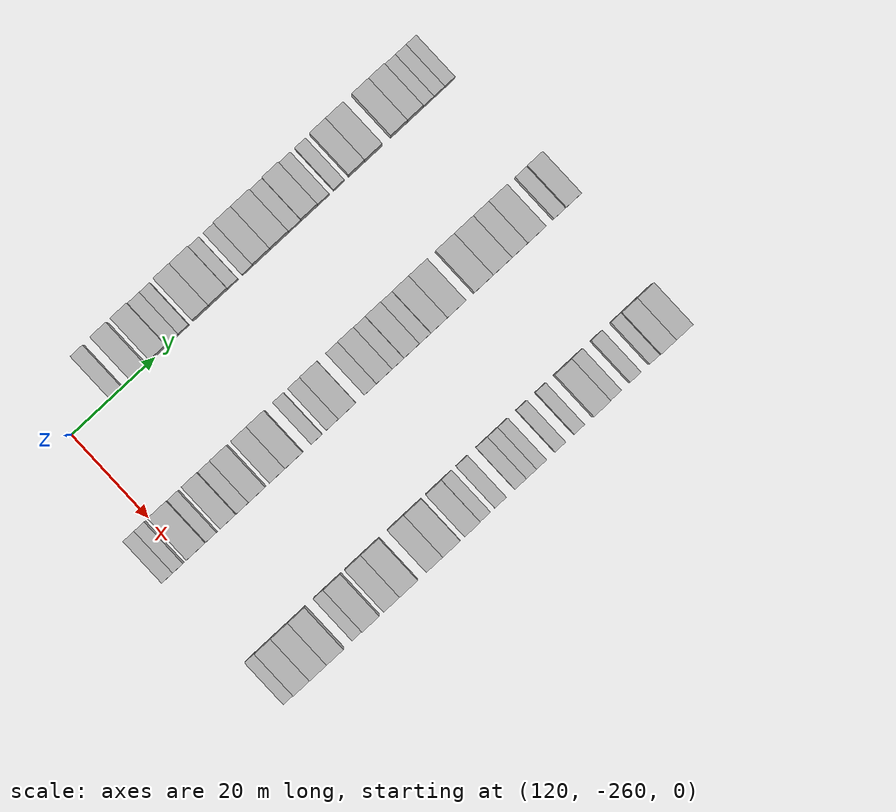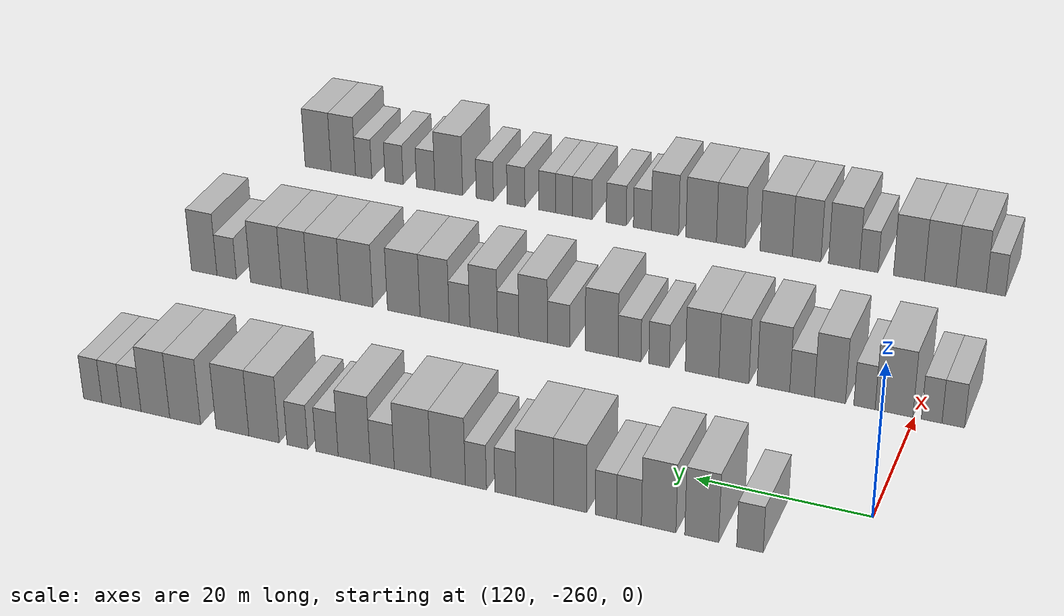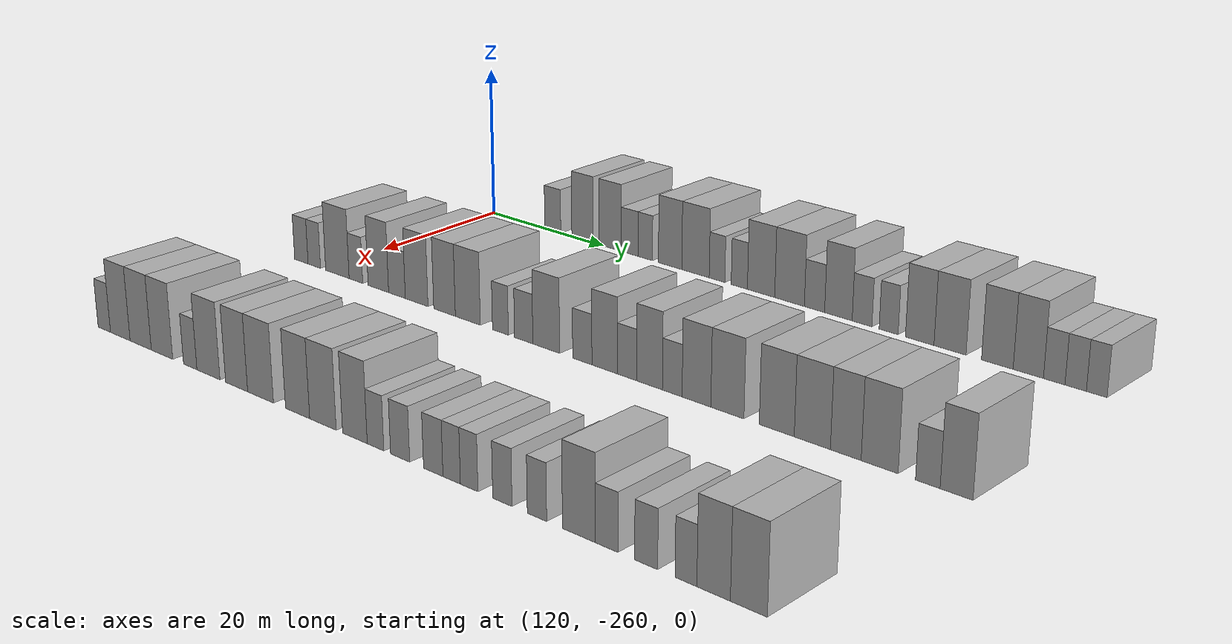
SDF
<sdf version="1.6">
 <world name="default">
  <model name="building_734">
   <static>1</static>
   <pose>115.0000 -249.0655 0 0.000000 0.000000 0.000000</pose>
   <link name="link">
    <pose>0 0 3.00 0 0 0</pose>
    <collision name="collision"><geometry><box><size>10.0000 2.9362 6.0000</size></box></geometry></collision>
    <visual name="visual">
     <cast_shadows>0</cast_shadows>
     <geometry><box><size>10.0000 2.9362 6.0000</size></box></geometry>
     <material>
      <script>
       <uri>model://HANNAS_wall/materials/scripts</uri>
       <uri>model://HANNAS_wall/materials/textures</uri>
       <name>vrc/HANNAS_wall</name>
      </script>
     </material>
    </visual>
   </link>
  </model>
  <model name="building_735">
   <static>1</static>
   <pose>115.0000 -243.6967 0 0.000000 0.000000 0.000000</pose>
   <link name="link">
    <pose>0 0 4.50 0 0 0</pose>
    <collision name="collision"><geometry><box><size>10.0000 3.8016 9.0000</size></box></geometry></collision>
    <visual name="visual">
     <cast_shadows>0</cast_shadows>
     <geometry><box><size>10.0000 3.8016 9.0000</size></box></geometry>
     <material>
      <script>
       <uri>model://HANNAS_wall/materials/scripts</uri>
       <uri>model://HANNAS_wall/materials/textures</uri>
       <name>vrc/HANNAS_wall</name>
      </script>
     </material>
    </visual>
   </link>
  </model>
  <model name="building_736">
   <static>1</static>
   <pose>115.0000 -238.8446 0 0.000000 0.000000 0.000000</pose>
   <link name="link">
    <pose>0 0 4.50 0 0 0</pose>
    <collision name="collision"><geometry><box><size>10.0000 3.9025 9.0000</size></box></geometry></collision>
    <visual name="visual">
     <cast_shadows>0</cast_shadows>
     <geometry><box><size>10.0000 3.9025 9.0000</size></box></geometry>
     <material>
      <script>
       <uri>model://HANNAS_wall/materials/scripts</uri>
       <uri>model://HANNAS_wall/materials/textures</uri>
       <name>vrc/HANNAS_wall</name>
      </script>
     </material>
    </visual>
   </link>
  </model>
  <model name="building_737">
   <static>1</static>
   <pose>115.0000 -235.4712 0 0.000000 0.000000 0.000000</pose>
   <link name="link">
    <pose>0 0 3.00 0 0 0</pose>
    <collision name="collision"><geometry><box><size>10.0000 2.8444 6.0000</size></box></geometry></collision>
    <visual name="visual">
     <cast_shadows>0</cast_shadows>
     <geometry><box><size>10.0000 2.8444 6.0000</size></box></geometry>
     <material>
      <script>
       <uri>model://HANNAS_wall/materials/scripts</uri>
       <uri>model://HANNAS_wall/materials/textures</uri>
       <name>vrc/HANNAS_wall</name>
      </script>
     </material>
    </visual>
   </link>
  </model>
  <model name="building_738">
   <static>1</static>
   <pose>115.0000 -232.8266 0 0.000000 0.000000 0.000000</pose>
   <link name="link">
    <pose>0 0 3.00 0 0 0</pose>
    <collision name="collision"><geometry><box><size>10.0000 2.4447 6.0000</size></box></geometry></collision>
    <visual name="visual">
     <cast_shadows>0</cast_shadows>
     <geometry><box><size>10.0000 2.4447 6.0000</size></box></geometry>
     <material>
      <script>
       <uri>model://HANNAS_wall/materials/scripts</uri>
       <uri>model://HANNAS_wall/materials/textures</uri>
       <name>vrc/HANNAS_wall</name>
      </script>
     </material>
    </visual>
   </link>
  </model>
  <model name="building_739">
   <static>1</static>
   <pose>115.0000 -228.6803 0 0.000000 0.000000 0.000000</pose>
   <link name="link">
    <pose>0 0 4.50 0 0 0</pose>
    <collision name="collision"><geometry><box><size>10.0000 3.8478 9.0000</size></box></geometry></collision>
    <visual name="visual">
     <cast_shadows>0</cast_shadows>
     <geometry><box><size>10.0000 3.8478 9.0000</size></box></geometry>
     <material>
      <script>
       <uri>model://HANNAS_wall/materials/scripts</uri>
       <uri>model://HANNAS_wall/materials/textures</uri>
       <name>vrc/HANNAS_wall</name>
      </script>
     </material>
    </visual>
   </link>
  </model>
  <model name="building_740">
   <static>1</static>
   <pose>115.0000 -224.5407 0 0.000000 0.000000 0.000000</pose>
   <link name="link">
    <pose>0 0 4.50 0 0 0</pose>
    <collision name="collision"><geometry><box><size>10.0000 4.4315 9.0000</size></box></geometry></collision>
    <visual name="visual">
     <cast_shadows>0</cast_shadows>
     <geometry><box><size>10.0000 4.4315 9.0000</size></box></geometry>
     <material>
      <script>
       <uri>model://HANNAS_wall/materials/scripts</uri>
       <uri>model://HANNAS_wall/materials/textures</uri>
       <name>vrc/HANNAS_wall</name>
      </script>
     </material>
    </visual>
   </link>
  </model>
  <model name="building_741">
   <static>1</static>
   <pose>115.0000 -221.0815 0 0.000000 0.000000 0.000000</pose>
   <link name="link">
    <pose>0 0 3.00 0 0 0</pose>
    <collision name="collision"><geometry><box><size>10.0000 2.4870 6.0000</size></box></geometry></collision>
    <visual name="visual">
     <cast_shadows>0</cast_shadows>
     <geometry><box><size>10.0000 2.4870 6.0000</size></box></geometry>
     <material>
      <script>
       <uri>model://HANNAS_wall/materials/scripts</uri>
       <uri>model://HANNAS_wall/materials/textures</uri>
       <name>vrc/HANNAS_wall</name>
      </script>
     </material>
    </visual>
   </link>
  </model>
  <model name="building_742">
   <static>1</static>
   <pose>115.0000 -217.5802 0 0.000000 0.000000 0.000000</pose>
   <link name="link">
    <pose>0 0 3.00 0 0 0</pose>
    <collision name="collision"><geometry><box><size>10.0000 2.5156 6.0000</size></box></geometry></collision>
    <visual name="visual">
     <cast_shadows>0</cast_shadows>
     <geometry><box><size>10.0000 2.5156 6.0000</size></box></geometry>
     <material>
      <script>
       <uri>model://HANNAS_wall/materials/scripts</uri>
       <uri>model://HANNAS_wall/materials/textures</uri>
       <name>vrc/HANNAS_wall</name>
      </script>
     </material>
    </visual>
   </link>
  </model>
  <model name="building_743">
   <static>1</static>
   <pose>115.0000 -214.2358 0 0.000000 0.000000 0.000000</pose>
   <link name="link">
    <pose>0 0 4.50 0 0 0</pose>
    <collision name="collision"><geometry><box><size>10.0000 4.1732 9.0000</size></box></geometry></collision>
    <visual name="visual">
     <cast_shadows>0</cast_shadows>
     <geometry><box><size>10.0000 4.1732 9.0000</size></box></geometry>
     <material>
      <script>
       <uri>model://HANNAS_wall/materials/scripts</uri>
       <uri>model://HANNAS_wall/materials/textures</uri>
       <name>vrc/HANNAS_wall</name>
      </script>
     </material>
    </visual>
   </link>
  </model>
  <model name="building_744">
   <static>1</static>
   <pose>115.0000 -209.9317 0 0.000000 0.000000 0.000000</pose>
   <link name="link">
    <pose>0 0 4.50 0 0 0</pose>
    <collision name="collision"><geometry><box><size>10.0000 4.4350 9.0000</size></box></geometry></collision>
    <visual name="visual">
     <cast_shadows>0</cast_shadows>
     <geometry><box><size>10.0000 4.4350 9.0000</size></box></geometry>
     <material>
      <script>
       <uri>model://HANNAS_wall/materials/scripts</uri>
       <uri>model://HANNAS_wall/materials/textures</uri>
       <name>vrc/HANNAS_wall</name>
      </script>
     </material>
    </visual>
   </link>
  </model>
  <model name="building_745">
   <static>1</static>
   <pose>115.0000 -206.2329 0 0.000000 0.000000 0.000000</pose>
   <link name="link">
    <pose>0 0 3.00 0 0 0</pose>
    <collision name="collision"><geometry><box><size>10.0000 2.9625 6.0000</size></box></geometry></collision>
    <visual name="visual">
     <cast_shadows>0</cast_shadows>
     <geometry><box><size>10.0000 2.9625 6.0000</size></box></geometry>
     <material>
      <script>
       <uri>model://HANNAS_wall/materials/scripts</uri>
       <uri>model://HANNAS_wall/materials/textures</uri>
       <name>vrc/HANNAS_wall</name>
      </script>
     </material>
    </visual>
   </link>
  </model>
  <model name="building_746">
   <static>1</static>
   <pose>115.0000 -202.7717 0 0.000000 0.000000 0.000000</pose>
   <link name="link">
    <pose>0 0 4.50 0 0 0</pose>
    <collision name="collision"><geometry><box><size>10.0000 3.9598 9.0000</size></box></geometry></collision>
    <visual name="visual">
     <cast_shadows>0</cast_shadows>
     <geometry><box><size>10.0000 3.9598 9.0000</size></box></geometry>
     <material>
      <script>
       <uri>model://HANNAS_wall/materials/scripts</uri>
       <uri>model://HANNAS_wall/materials/textures</uri>
       <name>vrc/HANNAS_wall</name>
      </script>
     </material>
    </visual>
   </link>
  </model>
  <model name="building_747">
   <static>1</static>
   <pose>115.0000 -199.3987 0 0.000000 0.000000 0.000000</pose>
   <link name="link">
    <pose>0 0 3.00 0 0 0</pose>
    <collision name="collision"><geometry><box><size>10.0000 2.7863 6.0000</size></box></geometry></collision>
    <visual name="visual">
     <cast_shadows>0</cast_shadows>
     <geometry><box><size>10.0000 2.7863 6.0000</size></box></geometry>
     <material>
      <script>
       <uri>model://HANNAS_wall/materials/scripts</uri>
       <uri>model://HANNAS_wall/materials/textures</uri>
       <name>vrc/HANNAS_wall</name>
      </script>
     </material>
    </visual>
   </link>
  </model>
  <model name="building_748">
   <static>1</static>
   <pose>115.0000 -195.6941 0 0.000000 0.000000 0.000000</pose>
   <link name="link">
    <pose>0 0 3.00 0 0 0</pose>
    <collision name="collision"><geometry><box><size>10.0000 2.6227 6.0000</size></box></geometry></collision>
    <visual name="visual">
     <cast_shadows>0</cast_shadows>
     <geometry><box><size>10.0000 2.6227 6.0000</size></box></geometry>
     <material>
      <script>
       <uri>model://HANNAS_wall/materials/scripts</uri>
       <uri>model://HANNAS_wall/materials/textures</uri>
       <name>vrc/HANNAS_wall</name>
      </script>
     </material>
    </visual>
   </link>
  </model>
  <model name="building_749">
   <static>1</static>
   <pose>115.0000 -191.4624 0 0.000000 0.000000 0.000000</pose>
   <link name="link">
    <pose>0 0 4.50 0 0 0</pose>
    <collision name="collision"><geometry><box><size>10.0000 3.8408 9.0000</size></box></geometry></collision>
    <visual name="visual">
     <cast_shadows>0</cast_shadows>
     <geometry><box><size>10.0000 3.8408 9.0000</size></box></geometry>
     <material>
      <script>
       <uri>model://HANNAS_wall/materials/scripts</uri>
       <uri>model://HANNAS_wall/materials/textures</uri>
       <name>vrc/HANNAS_wall</name>
      </script>
     </material>
    </visual>
   </link>
  </model>
  <model name="building_750">
   <static>1</static>
   <pose>115.0000 -187.4349 0 0.000000 0.000000 0.000000</pose>
   <link name="link">
    <pose>0 0 4.50 0 0 0</pose>
    <collision name="collision"><geometry><box><size>10.0000 4.2141 9.0000</size></box></geometry></collision>
    <visual name="visual">
     <cast_shadows>0</cast_shadows>
     <geometry><box><size>10.0000 4.2141 9.0000</size></box></geometry>
     <material>
      <script>
       <uri>model://HANNAS_wall/materials/scripts</uri>
       <uri>model://HANNAS_wall/materials/textures</uri>
       <name>vrc/HANNAS_wall</name>
      </script>
     </material>
    </visual>
   </link>
  </model>
  <model name="building_751">
   <static>1</static>
   <pose>115.0000 -181.3214 0 0.000000 0.000000 0.000000</pose>
   <link name="link">
    <pose>0 0 4.50 0 0 0</pose>
    <collision name="collision"><geometry><box><size>10.0000 4.0129 9.0000</size></box></geometry></collision>
    <visual name="visual">
     <cast_shadows>0</cast_shadows>
     <geometry><box><size>10.0000 4.0129 9.0000</size></box></geometry>
     <material>
      <script>
       <uri>model://HANNAS_wall/materials/scripts</uri>
       <uri>model://HANNAS_wall/materials/textures</uri>
       <name>vrc/HANNAS_wall</name>
      </script>
     </material>
    </visual>
   </link>
  </model>
  <model name="building_752">
   <static>1</static>
   <pose>115.0000 -177.4345 0 0.000000 0.000000 0.000000</pose>
   <link name="link">
    <pose>0 0 4.50 0 0 0</pose>
    <collision name="collision"><geometry><box><size>10.0000 3.7611 9.0000</size></box></geometry></collision>
    <visual name="visual">
     <cast_shadows>0</cast_shadows>
     <geometry><box><size>10.0000 3.7611 9.0000</size></box></geometry>
     <material>
      <script>
       <uri>model://HANNAS_wall/materials/scripts</uri>
       <uri>model://HANNAS_wall/materials/textures</uri>
       <name>vrc/HANNAS_wall</name>
      </script>
     </material>
    </visual>
   </link>
  </model>
  <model name="building_753">
   <static>1</static>
   <pose>115.0000 -174.2421 0 0.000000 0.000000 0.000000</pose>
   <link name="link">
    <pose>0 0 3.00 0 0 0</pose>
    <collision name="collision"><geometry><box><size>10.0000 2.6236 6.0000</size></box></geometry></collision>
    <visual name="visual">
     <cast_shadows>0</cast_shadows>
     <geometry><box><size>10.0000 2.6236 6.0000</size></box></geometry>
     <material>
      <script>
       <uri>model://HANNAS_wall/materials/scripts</uri>
       <uri>model://HANNAS_wall/materials/textures</uri>
       <name>vrc/HANNAS_wall</name>
      </script>
     </material>
    </visual>
   </link>
  </model>
  <model name="building_754">
   <static>1</static>
   <pose>115.0000 -171.6511 0 0.000000 0.000000 0.000000</pose>
   <link name="link">
    <pose>0 0 3.00 0 0 0</pose>
    <collision name="collision"><geometry><box><size>10.0000 2.5583 6.0000</size></box></geometry></collision>
    <visual name="visual">
     <cast_shadows>0</cast_shadows>
     <geometry><box><size>10.0000 2.5583 6.0000</size></box></geometry>
     <material>
      <script>
       <uri>model://HANNAS_wall/materials/scripts</uri>
       <uri>model://HANNAS_wall/materials/textures</uri>
       <name>vrc/HANNAS_wall</name>
      </script>
     </material>
    </visual>
   </link>
  </model>
  <model name="building_755">
   <static>1</static>
   <pose>115.0000 -169.1493 0 0.000000 0.000000 0.000000</pose>
   <link name="link">
    <pose>0 0 3.00 0 0 0</pose>
    <collision name="collision"><geometry><box><size>10.0000 2.4453 6.0000</size></box></geometry></collision>
    <visual name="visual">
     <cast_shadows>0</cast_shadows>
     <geometry><box><size>10.0000 2.4453 6.0000</size></box></geometry>
     <material>
      <script>
       <uri>model://HANNAS_wall/materials/scripts</uri>
       <uri>model://HANNAS_wall/materials/textures</uri>
       <name>vrc/HANNAS_wall</name>
      </script>
     </material>
    </visual>
   </link>
  </model>
  <model name="building_964">
   <static>1</static>
   <pose>145.0000 -264.4813 0 0.000000 0.000000 0.000000</pose>
   <link name="link">
    <pose>0 0 3.00 0 0 0</pose>
    <collision name="collision"><geometry><box><size>10.0000 2.6375 6.0000</size></box></geometry></collision>
    <visual name="visual">
     <cast_shadows>0</cast_shadows>
     <geometry><box><size>10.0000 2.6375 6.0000</size></box></geometry>
     <material>
      <script>
       <uri>model://HANNAS_wall/materials/scripts</uri>
       <uri>model://HANNAS_wall/materials/textures</uri>
       <name>vrc/HANNAS_wall</name>
      </script>
     </material>
    </visual>
   </link>
  </model>
  <model name="building_965">
   <static>1</static>
   <pose>145.0000 -261.9536 0 0.000000 0.000000 0.000000</pose>
   <link name="link">
    <pose>0 0 3.00 0 0 0</pose>
    <collision name="collision"><geometry><box><size>10.0000 2.4178 6.0000</size></box></geometry></collision>
    <visual name="visual">
     <cast_shadows>0</cast_shadows>
     <geometry><box><size>10.0000 2.4178 6.0000</size></box></geometry>
     <material>
      <script>
       <uri>model://HANNAS_wall/materials/scripts</uri>
       <uri>model://HANNAS_wall/materials/textures</uri>
       <name>vrc/HANNAS_wall</name>
      </script>
     </material>
    </visual>
   </link>
  </model>
  <model name="building_966">
   <static>1</static>
   <pose>145.0000 -257.5143 0 0.000000 0.000000 0.000000</pose>
   <link name="link">
    <pose>0 0 4.50 0 0 0</pose>
    <collision name="collision"><geometry><box><size>10.0000 4.4609 9.0000</size></box></geometry></collision>
    <visual name="visual">
     <cast_shadows>0</cast_shadows>
     <geometry><box><size>10.0000 4.4609 9.0000</size></box></geometry>
     <material>
      <script>
       <uri>model://HANNAS_wall/materials/scripts</uri>
       <uri>model://HANNAS_wall/materials/textures</uri>
       <name>vrc/HANNAS_wall</name>
      </script>
     </material>
    </visual>
   </link>
  </model>
  <model name="building_967">
   <static>1</static>
   <pose>145.0000 -254.0142 0 0.000000 0.000000 0.000000</pose>
   <link name="link">
    <pose>0 0 3.00 0 0 0</pose>
    <collision name="collision"><geometry><box><size>10.0000 2.5393 6.0000</size></box></geometry></collision>
    <visual name="visual">
     <cast_shadows>0</cast_shadows>
     <geometry><box><size>10.0000 2.5393 6.0000</size></box></geometry>
     <material>
      <script>
       <uri>model://HANNAS_wall/materials/scripts</uri>
       <uri>model://HANNAS_wall/materials/textures</uri>
       <name>vrc/HANNAS_wall</name>
      </script>
     </material>
    </visual>
   </link>
  </model>
  <model name="building_968">
   <static>1</static>
   <pose>145.0000 -249.8758 0 0.000000 0.000000 0.000000</pose>
   <link name="link">
    <pose>0 0 4.50 0 0 0</pose>
    <collision name="collision"><geometry><box><size>10.0000 3.7374 9.0000</size></box></geometry></collision>
    <visual name="visual">
     <cast_shadows>0</cast_shadows>
     <geometry><box><size>10.0000 3.7374 9.0000</size></box></geometry>
     <material>
      <script>
       <uri>model://HANNAS_wall/materials/scripts</uri>
       <uri>model://HANNAS_wall/materials/textures</uri>
       <name>vrc/HANNAS_wall</name>
      </script>
     </material>
    </visual>
   </link>
  </model>
  <model name="building_969">
   <static>1</static>
   <pose>145.0000 -246.5088 0 0.000000 0.000000 0.000000</pose>
   <link name="link">
    <pose>0 0 3.00 0 0 0</pose>
    <collision name="collision"><geometry><box><size>10.0000 2.9966 6.0000</size></box></geometry></collision>
    <visual name="visual">
     <cast_shadows>0</cast_shadows>
     <geometry><box><size>10.0000 2.9966 6.0000</size></box></geometry>
     <material>
      <script>
       <uri>model://HANNAS_wall/materials/scripts</uri>
       <uri>model://HANNAS_wall/materials/textures</uri>
       <name>vrc/HANNAS_wall</name>
      </script>
     </material>
    </visual>
   </link>
  </model>
  <model name="building_970">
   <static>1</static>
   <pose>145.0000 -243.0131 0 0.000000 0.000000 0.000000</pose>
   <link name="link">
    <pose>0 0 4.50 0 0 0</pose>
    <collision name="collision"><geometry><box><size>10.0000 3.9949 9.0000</size></box></geometry></collision>
    <visual name="visual">
     <cast_shadows>0</cast_shadows>
     <geometry><box><size>10.0000 3.9949 9.0000</size></box></geometry>
     <material>
      <script>
       <uri>model://HANNAS_wall/materials/scripts</uri>
       <uri>model://HANNAS_wall/materials/textures</uri>
       <name>vrc/HANNAS_wall</name>
      </script>
     </material>
    </visual>
   </link>
  </model>
  <model name="building_971">
   <static>1</static>
   <pose>145.0000 -238.1634 0 0.000000 0.000000 0.000000</pose>
   <link name="link">
    <pose>0 0 4.50 0 0 0</pose>
    <collision name="collision"><geometry><box><size>10.0000 3.7045 9.0000</size></box></geometry></collision>
    <visual name="visual">
     <cast_shadows>0</cast_shadows>
     <geometry><box><size>10.0000 3.7045 9.0000</size></box></geometry>
     <material>
      <script>
       <uri>model://HANNAS_wall/materials/scripts</uri>
       <uri>model://HANNAS_wall/materials/textures</uri>
       <name>vrc/HANNAS_wall</name>
      </script>
     </material>
    </visual>
   </link>
  </model>
  <model name="building_972">
   <static>1</static>
   <pose>145.0000 -234.2167 0 0.000000 0.000000 0.000000</pose>
   <link name="link">
    <pose>0 0 4.50 0 0 0</pose>
    <collision name="collision"><geometry><box><size>10.0000 4.1888 9.0000</size></box></geometry></collision>
    <visual name="visual">
     <cast_shadows>0</cast_shadows>
     <geometry><box><size>10.0000 4.1888 9.0000</size></box></geometry>
     <material>
      <script>
       <uri>model://HANNAS_wall/materials/scripts</uri>
       <uri>model://HANNAS_wall/materials/textures</uri>
       <name>vrc/HANNAS_wall</name>
      </script>
     </material>
    </visual>
   </link>
  </model>
  <model name="building_973">
   <static>1</static>
   <pose>145.0000 -228.8308 0 0.000000 0.000000 0.000000</pose>
   <link name="link">
    <pose>0 0 3.00 0 0 0</pose>
    <collision name="collision"><geometry><box><size>10.0000 2.5831 6.0000</size></box></geometry></collision>
    <visual name="visual">
     <cast_shadows>0</cast_shadows>
     <geometry><box><size>10.0000 2.5831 6.0000</size></box></geometry>
     <material>
      <script>
       <uri>model://HANNAS_wall/materials/scripts</uri>
       <uri>model://HANNAS_wall/materials/textures</uri>
       <name>vrc/HANNAS_wall</name>
      </script>
     </material>
    </visual>
   </link>
  </model>
  <model name="building_974">
   <static>1</static>
   <pose>145.0000 -225.0852 0 0.000000 0.000000 0.000000</pose>
   <link name="link">
    <pose>0 0 3.00 0 0 0</pose>
    <collision name="collision"><geometry><box><size>10.0000 2.9081 6.0000</size></box></geometry></collision>
    <visual name="visual">
     <cast_shadows>0</cast_shadows>
     <geometry><box><size>10.0000 2.9081 6.0000</size></box></geometry>
     <material>
      <script>
       <uri>model://HANNAS_wall/materials/scripts</uri>
       <uri>model://HANNAS_wall/materials/textures</uri>
       <name>vrc/HANNAS_wall</name>
      </script>
     </material>
    </visual>
   </link>
  </model>
  <model name="building_975">
   <static>1</static>
   <pose>145.0000 -221.5434 0 0.000000 0.000000 0.000000</pose>
   <link name="link">
    <pose>0 0 4.50 0 0 0</pose>
    <collision name="collision"><geometry><box><size>10.0000 4.1755 9.0000</size></box></geometry></collision>
    <visual name="visual">
     <cast_shadows>0</cast_shadows>
     <geometry><box><size>10.0000 4.1755 9.0000</size></box></geometry>
     <material>
      <script>
       <uri>model://HANNAS_wall/materials/scripts</uri>
       <uri>model://HANNAS_wall/materials/textures</uri>
       <name>vrc/HANNAS_wall</name>
      </script>
     </material>
    </visual>
   </link>
  </model>
  <model name="building_976">
   <static>1</static>
   <pose>145.0000 -216.0040 0 0.000000 0.000000 0.000000</pose>
   <link name="link">
    <pose>0 0 3.00 0 0 0</pose>
    <collision name="collision"><geometry><box><size>10.0000 2.9034 6.0000</size></box></geometry></collision>
    <visual name="visual">
     <cast_shadows>0</cast_shadows>
     <geometry><box><size>10.0000 2.9034 6.0000</size></box></geometry>
     <material>
      <script>
       <uri>model://HANNAS_wall/materials/scripts</uri>
       <uri>model://HANNAS_wall/materials/textures</uri>
       <name>vrc/HANNAS_wall</name>
      </script>
     </material>
    </visual>
   </link>
  </model>
  <model name="building_977">
   <static>1</static>
   <pose>145.0000 -212.6769 0 0.000000 0.000000 0.000000</pose>
   <link name="link">
    <pose>0 0 4.50 0 0 0</pose>
    <collision name="collision"><geometry><box><size>10.0000 3.7507 9.0000</size></box></geometry></collision>
    <visual name="visual">
     <cast_shadows>0</cast_shadows>
     <geometry><box><size>10.0000 3.7507 9.0000</size></box></geometry>
     <material>
      <script>
       <uri>model://HANNAS_wall/materials/scripts</uri>
       <uri>model://HANNAS_wall/materials/textures</uri>
       <name>vrc/HANNAS_wall</name>
      </script>
     </material>
    </visual>
   </link>
  </model>
  <model name="building_978">
   <static>1</static>
   <pose>145.0000 -209.3964 0 0.000000 0.000000 0.000000</pose>
   <link name="link">
    <pose>0 0 3.00 0 0 0</pose>
    <collision name="collision"><geometry><box><size>10.0000 2.8104 6.0000</size></box></geometry></collision>
    <visual name="visual">
     <cast_shadows>0</cast_shadows>
     <geometry><box><size>10.0000 2.8104 6.0000</size></box></geometry>
     <material>
      <script>
       <uri>model://HANNAS_wall/materials/scripts</uri>
       <uri>model://HANNAS_wall/materials/textures</uri>
       <name>vrc/HANNAS_wall</name>
      </script>
     </material>
    </visual>
   </link>
  </model>
  <model name="building_979">
   <static>1</static>
   <pose>145.0000 -206.1566 0 0.000000 0.000000 0.000000</pose>
   <link name="link">
    <pose>0 0 4.50 0 0 0</pose>
    <collision name="collision"><geometry><box><size>10.0000 3.6693 9.0000</size></box></geometry></collision>
    <visual name="visual">
     <cast_shadows>0</cast_shadows>
     <geometry><box><size>10.0000 3.6693 9.0000</size></box></geometry>
     <material>
      <script>
       <uri>model://HANNAS_wall/materials/scripts</uri>
       <uri>model://HANNAS_wall/materials/textures</uri>
       <name>vrc/HANNAS_wall</name>
      </script>
     </material>
    </visual>
   </link>
  </model>
  <model name="building_980">
   <static>1</static>
   <pose>145.0000 -202.9499 0 0.000000 0.000000 0.000000</pose>
   <link name="link">
    <pose>0 0 3.00 0 0 0</pose>
    <collision name="collision"><geometry><box><size>10.0000 2.7441 6.0000</size></box></geometry></collision>
    <visual name="visual">
     <cast_shadows>0</cast_shadows>
     <geometry><box><size>10.0000 2.7441 6.0000</size></box></geometry>
     <material>
      <script>
       <uri>model://HANNAS_wall/materials/scripts</uri>
       <uri>model://HANNAS_wall/materials/textures</uri>
       <name>vrc/HANNAS_wall</name>
      </script>
     </material>
    </visual>
   </link>
  </model>
  <model name="building_981">
   <static>1</static>
   <pose>145.0000 -199.6139 0 0.000000 0.000000 0.000000</pose>
   <link name="link">
    <pose>0 0 4.50 0 0 0</pose>
    <collision name="collision"><geometry><box><size>10.0000 3.9278 9.0000</size></box></geometry></collision>
    <visual name="visual">
     <cast_shadows>0</cast_shadows>
     <geometry><box><size>10.0000 3.9278 9.0000</size></box></geometry>
     <material>
      <script>
       <uri>model://HANNAS_wall/materials/scripts</uri>
       <uri>model://HANNAS_wall/materials/textures</uri>
       <name>vrc/HANNAS_wall</name>
      </script>
     </material>
    </visual>
   </link>
  </model>
  <model name="building_982">
   <static>1</static>
   <pose>145.0000 -195.4433 0 0.000000 0.000000 0.000000</pose>
   <link name="link">
    <pose>0 0 4.50 0 0 0</pose>
    <collision name="collision"><geometry><box><size>10.0000 4.4133 9.0000</size></box></geometry></collision>
    <visual name="visual">
     <cast_shadows>0</cast_shadows>
     <geometry><box><size>10.0000 4.4133 9.0000</size></box></geometry>
     <material>
      <script>
       <uri>model://HANNAS_wall/materials/scripts</uri>
       <uri>model://HANNAS_wall/materials/textures</uri>
       <name>vrc/HANNAS_wall</name>
      </script>
     </material>
    </visual>
   </link>
  </model>
  <model name="building_983">
   <static>1</static>
   <pose>145.0000 -188.9990 0 0.000000 0.000000 0.000000</pose>
   <link name="link">
    <pose>0 0 4.50 0 0 0</pose>
    <collision name="collision"><geometry><box><size>10.0000 4.4754 9.0000</size></box></geometry></collision>
    <visual name="visual">
     <cast_shadows>0</cast_shadows>
     <geometry><box><size>10.0000 4.4754 9.0000</size></box></geometry>
     <material>
      <script>
       <uri>model://HANNAS_wall/materials/scripts</uri>
       <uri>model://HANNAS_wall/materials/textures</uri>
       <name>vrc/HANNAS_wall</name>
      </script>
     </material>
    </visual>
   </link>
  </model>
  <model name="building_984">
   <static>1</static>
   <pose>145.0000 -184.5163 0 0.000000 0.000000 0.000000</pose>
   <link name="link">
    <pose>0 0 4.50 0 0 0</pose>
    <collision name="collision"><geometry><box><size>10.0000 4.4900 9.0000</size></box></geometry></collision>
    <visual name="visual">
     <cast_shadows>0</cast_shadows>
     <geometry><box><size>10.0000 4.4900 9.0000</size></box></geometry>
     <material>
      <script>
       <uri>model://HANNAS_wall/materials/scripts</uri>
       <uri>model://HANNAS_wall/materials/textures</uri>
       <name>vrc/HANNAS_wall</name>
      </script>
     </material>
    </visual>
   </link>
  </model>
  <model name="building_985">
   <static>1</static>
   <pose>145.0000 -180.4124 0 0.000000 0.000000 0.000000</pose>
   <link name="link">
    <pose>0 0 4.50 0 0 0</pose>
    <collision name="collision"><geometry><box><size>10.0000 3.7178 9.0000</size></box></geometry></collision>
    <visual name="visual">
     <cast_shadows>0</cast_shadows>
     <geometry><box><size>10.0000 3.7178 9.0000</size></box></geometry>
     <material>
      <script>
       <uri>model://HANNAS_wall/materials/scripts</uri>
       <uri>model://HANNAS_wall/materials/textures</uri>
       <name>vrc/HANNAS_wall</name>
      </script>
     </material>
    </visual>
   </link>
  </model>
  <model name="building_986">
   <static>1</static>
   <pose>145.0000 -176.3756 0 0.000000 0.000000 0.000000</pose>
   <link name="link">
    <pose>0 0 4.50 0 0 0</pose>
    <collision name="collision"><geometry><box><size>10.0000 4.3557 9.0000</size></box></geometry></collision>
    <visual name="visual">
     <cast_shadows>0</cast_shadows>
     <geometry><box><size>10.0000 4.3557 9.0000</size></box></geometry>
     <material>
      <script>
       <uri>model://HANNAS_wall/materials/scripts</uri>
       <uri>model://HANNAS_wall/materials/textures</uri>
       <name>vrc/HANNAS_wall</name>
      </script>
     </material>
    </visual>
   </link>
  </model>
  <model name="building_987">
   <static>1</static>
   <pose>145.0000 -170.8051 0 0.000000 0.000000 0.000000</pose>
   <link name="link">
    <pose>0 0 3.00 0 0 0</pose>
    <collision name="collision"><geometry><box><size>10.0000 2.7853 6.0000</size></box></geometry></collision>
    <visual name="visual">
     <cast_shadows>0</cast_shadows>
     <geometry><box><size>10.0000 2.7853 6.0000</size></box></geometry>
     <material>
      <script>
       <uri>model://HANNAS_wall/materials/scripts</uri>
       <uri>model://HANNAS_wall/materials/textures</uri>
       <name>vrc/HANNAS_wall</name>
      </script>
     </material>
    </visual>
   </link>
  </model>
  <model name="building_988">
   <static>1</static>
   <pose>145.0000 -167.5837 0 0.000000 0.000000 0.000000</pose>
   <link name="link">
    <pose>0 0 4.50 0 0 0</pose>
    <collision name="collision"><geometry><box><size>10.0000 3.6575 9.0000</size></box></geometry></collision>
    <visual name="visual">
     <cast_shadows>0</cast_shadows>
     <geometry><box><size>10.0000 3.6575 9.0000</size></box></geometry>
     <material>
      <script>
       <uri>model://HANNAS_wall/materials/scripts</uri>
       <uri>model://HANNAS_wall/materials/textures</uri>
       <name>vrc/HANNAS_wall</name>
      </script>
     </material>
    </visual>
   </link>
  </model>
  <model name="building_1188">
   <static>1</static>
   <pose>175.0000 -263.4295 0 0.000000 0.000000 0.000000</pose>
   <link name="link">
    <pose>0 0 3.00 0 0 0</pose>
    <collision name="collision"><geometry><box><size>10.0000 2.4549 6.0000</size></box></geometry></collision>
    <visual name="visual">
     <cast_shadows>0</cast_shadows>
     <geometry><box><size>10.0000 2.4549 6.0000</size></box></geometry>
     <material>
      <script>
       <uri>model://HANNAS_wall/materials/scripts</uri>
       <uri>model://HANNAS_wall/materials/textures</uri>
       <name>vrc/HANNAS_wall</name>
      </script>
     </material>
    </visual>
   </link>
  </model>
  <model name="building_1189">
   <static>1</static>
   <pose>175.0000 -260.2768 0 0.000000 0.000000 0.000000</pose>
   <link name="link">
    <pose>0 0 4.50 0 0 0</pose>
    <collision name="collision"><geometry><box><size>10.0000 3.8507 9.0000</size></box></geometry></collision>
    <visual name="visual">
     <cast_shadows>0</cast_shadows>
     <geometry><box><size>10.0000 3.8507 9.0000</size></box></geometry>
     <material>
      <script>
       <uri>model://HANNAS_wall/materials/scripts</uri>
       <uri>model://HANNAS_wall/materials/textures</uri>
       <name>vrc/HANNAS_wall</name>
      </script>
     </material>
    </visual>
   </link>
  </model>
  <model name="building_1190">
   <static>1</static>
   <pose>175.0000 -256.3166 0 0.000000 0.000000 0.000000</pose>
   <link name="link">
    <pose>0 0 4.50 0 0 0</pose>
    <collision name="collision"><geometry><box><size>10.0000 4.0696 9.0000</size></box></geometry></collision>
    <visual name="visual">
     <cast_shadows>0</cast_shadows>
     <geometry><box><size>10.0000 4.0696 9.0000</size></box></geometry>
     <material>
      <script>
       <uri>model://HANNAS_wall/materials/scripts</uri>
       <uri>model://HANNAS_wall/materials/textures</uri>
       <name>vrc/HANNAS_wall</name>
      </script>
     </material>
    </visual>
   </link>
  </model>
  <model name="building_1191">
   <static>1</static>
   <pose>175.0000 -252.2789 0 0.000000 0.000000 0.000000</pose>
   <link name="link">
    <pose>0 0 4.50 0 0 0</pose>
    <collision name="collision"><geometry><box><size>10.0000 4.0058 9.0000</size></box></geometry></collision>
    <visual name="visual">
     <cast_shadows>0</cast_shadows>
     <geometry><box><size>10.0000 4.0058 9.0000</size></box></geometry>
     <material>
      <script>
       <uri>model://HANNAS_wall/materials/scripts</uri>
       <uri>model://HANNAS_wall/materials/textures</uri>
       <name>vrc/HANNAS_wall</name>
      </script>
     </material>
    </visual>
   </link>
  </model>
  <model name="building_1192">
   <static>1</static>
   <pose>175.0000 -247.0608 0 0.000000 0.000000 0.000000</pose>
   <link name="link">
    <pose>0 0 3.00 0 0 0</pose>
    <collision name="collision"><geometry><box><size>10.0000 2.4302 6.0000</size></box></geometry></collision>
    <visual name="visual">
     <cast_shadows>0</cast_shadows>
     <geometry><box><size>10.0000 2.4302 6.0000</size></box></geometry>
     <material>
      <script>
       <uri>model://HANNAS_wall/materials/scripts</uri>
       <uri>model://HANNAS_wall/materials/textures</uri>
       <name>vrc/HANNAS_wall</name>
      </script>
     </material>
    </visual>
   </link>
  </model>
  <model name="building_1193">
   <static>1</static>
   <pose>175.0000 -243.7949 0 0.000000 0.000000 0.000000</pose>
   <link name="link">
    <pose>0 0 4.50 0 0 0</pose>
    <collision name="collision"><geometry><box><size>10.0000 4.1017 9.0000</size></box></geometry></collision>
    <visual name="visual">
     <cast_shadows>0</cast_shadows>
     <geometry><box><size>10.0000 4.1017 9.0000</size></box></geometry>
     <material>
      <script>
       <uri>model://HANNAS_wall/materials/scripts</uri>
       <uri>model://HANNAS_wall/materials/textures</uri>
       <name>vrc/HANNAS_wall</name>
      </script>
     </material>
    </visual>
   </link>
  </model>
  <model name="building_1194">
   <static>1</static>
   <pose>175.0000 -238.8424 0 0.000000 0.000000 0.000000</pose>
   <link name="link">
    <pose>0 0 4.50 0 0 0</pose>
    <collision name="collision"><geometry><box><size>10.0000 3.8034 9.0000</size></box></geometry></collision>
    <visual name="visual">
     <cast_shadows>0</cast_shadows>
     <geometry><box><size>10.0000 3.8034 9.0000</size></box></geometry>
     <material>
      <script>
       <uri>model://HANNAS_wall/materials/scripts</uri>
       <uri>model://HANNAS_wall/materials/textures</uri>
       <name>vrc/HANNAS_wall</name>
      </script>
     </material>
    </visual>
   </link>
  </model>
  <model name="building_1195">
   <static>1</static>
   <pose>175.0000 -234.7624 0 0.000000 0.000000 0.000000</pose>
   <link name="link">
    <pose>0 0 4.50 0 0 0</pose>
    <collision name="collision"><geometry><box><size>10.0000 4.3567 9.0000</size></box></geometry></collision>
    <visual name="visual">
     <cast_shadows>0</cast_shadows>
     <geometry><box><size>10.0000 4.3567 9.0000</size></box></geometry>
     <material>
      <script>
       <uri>model://HANNAS_wall/materials/scripts</uri>
       <uri>model://HANNAS_wall/materials/textures</uri>
       <name>vrc/HANNAS_wall</name>
      </script>
     </material>
    </visual>
   </link>
  </model>
  <model name="building_1196">
   <static>1</static>
   <pose>175.0000 -228.6251 0 0.000000 0.000000 0.000000</pose>
   <link name="link">
    <pose>0 0 4.50 0 0 0</pose>
    <collision name="collision"><geometry><box><size>10.0000 3.9178 9.0000</size></box></geometry></collision>
    <visual name="visual">
     <cast_shadows>0</cast_shadows>
     <geometry><box><size>10.0000 3.9178 9.0000</size></box></geometry>
     <material>
      <script>
       <uri>model://HANNAS_wall/materials/scripts</uri>
       <uri>model://HANNAS_wall/materials/textures</uri>
       <name>vrc/HANNAS_wall</name>
      </script>
     </material>
    </visual>
   </link>
  </model>
  <model name="building_1197">
   <static>1</static>
   <pose>175.0000 -224.5710 0 0.000000 0.000000 0.000000</pose>
   <link name="link">
    <pose>0 0 4.50 0 0 0</pose>
    <collision name="collision"><geometry><box><size>10.0000 4.1905 9.0000</size></box></geometry></collision>
    <visual name="visual">
     <cast_shadows>0</cast_shadows>
     <geometry><box><size>10.0000 4.1905 9.0000</size></box></geometry>
     <material>
      <script>
       <uri>model://HANNAS_wall/materials/scripts</uri>
       <uri>model://HANNAS_wall/materials/textures</uri>
       <name>vrc/HANNAS_wall</name>
      </script>
     </material>
    </visual>
   </link>
  </model>
  <model name="building_1198">
   <static>1</static>
   <pose>175.0000 -219.5884 0 0.000000 0.000000 0.000000</pose>
   <link name="link">
    <pose>0 0 4.50 0 0 0</pose>
    <collision name="collision"><geometry><box><size>10.0000 3.7746 9.0000</size></box></geometry></collision>
    <visual name="visual">
     <cast_shadows>0</cast_shadows>
     <geometry><box><size>10.0000 3.7746 9.0000</size></box></geometry>
     <material>
      <script>
       <uri>model://HANNAS_wall/materials/scripts</uri>
       <uri>model://HANNAS_wall/materials/textures</uri>
       <name>vrc/HANNAS_wall</name>
      </script>
     </material>
    </visual>
   </link>
  </model>
  <model name="building_1199">
   <static>1</static>
   <pose>175.0000 -216.4528 0 0.000000 0.000000 0.000000</pose>
   <link name="link">
    <pose>0 0 3.00 0 0 0</pose>
    <collision name="collision"><geometry><box><size>10.0000 2.4966 6.0000</size></box></geometry></collision>
    <visual name="visual">
     <cast_shadows>0</cast_shadows>
     <geometry><box><size>10.0000 2.4966 6.0000</size></box></geometry>
     <material>
      <script>
       <uri>model://HANNAS_wall/materials/scripts</uri>
       <uri>model://HANNAS_wall/materials/textures</uri>
       <name>vrc/HANNAS_wall</name>
      </script>
     </material>
    </visual>
   </link>
  </model>
  <model name="building_1200">
   <static>1</static>
   <pose>175.0000 -212.8041 0 0.000000 0.000000 0.000000</pose>
   <link name="link">
    <pose>0 0 3.00 0 0 0</pose>
    <collision name="collision"><geometry><box><size>10.0000 2.8010 6.0000</size></box></geometry></collision>
    <visual name="visual">
     <cast_shadows>0</cast_shadows>
     <geometry><box><size>10.0000 2.8010 6.0000</size></box></geometry>
     <material>
      <script>
       <uri>model://HANNAS_wall/materials/scripts</uri>
       <uri>model://HANNAS_wall/materials/textures</uri>
       <name>vrc/HANNAS_wall</name>
      </script>
     </material>
    </visual>
   </link>
  </model>
  <model name="building_1201">
   <static>1</static>
   <pose>175.0000 -208.0288 0 0.000000 0.000000 0.000000</pose>
   <link name="link">
    <pose>0 0 3.00 0 0 0</pose>
    <collision name="collision"><geometry><box><size>10.0000 2.7495 6.0000</size></box></geometry></collision>
    <visual name="visual">
     <cast_shadows>0</cast_shadows>
     <geometry><box><size>10.0000 2.7495 6.0000</size></box></geometry>
     <material>
      <script>
       <uri>model://HANNAS_wall/materials/scripts</uri>
       <uri>model://HANNAS_wall/materials/textures</uri>
       <name>vrc/HANNAS_wall</name>
      </script>
     </material>
    </visual>
   </link>
  </model>
  <model name="building_1202">
   <static>1</static>
   <pose>175.0000 -205.4357 0 0.000000 0.000000 0.000000</pose>
   <link name="link">
    <pose>0 0 3.00 0 0 0</pose>
    <collision name="collision"><geometry><box><size>10.0000 2.4366 6.0000</size></box></geometry></collision>
    <visual name="visual">
     <cast_shadows>0</cast_shadows>
     <geometry><box><size>10.0000 2.4366 6.0000</size></box></geometry>
     <material>
      <script>
       <uri>model://HANNAS_wall/materials/scripts</uri>
       <uri>model://HANNAS_wall/materials/textures</uri>
       <name>vrc/HANNAS_wall</name>
      </script>
     </material>
    </visual>
   </link>
  </model>
  <model name="building_1203">
   <static>1</static>
   <pose>175.0000 -203.0135 0 0.000000 0.000000 0.000000</pose>
   <link name="link">
    <pose>0 0 3.00 0 0 0</pose>
    <collision name="collision"><geometry><box><size>10.0000 2.4078 6.0000</size></box></geometry></collision>
    <visual name="visual">
     <cast_shadows>0</cast_shadows>
     <geometry><box><size>10.0000 2.4078 6.0000</size></box></geometry>
     <material>
      <script>
       <uri>model://HANNAS_wall/materials/scripts</uri>
       <uri>model://HANNAS_wall/materials/textures</uri>
       <name>vrc/HANNAS_wall</name>
      </script>
     </material>
    </visual>
   </link>
  </model>
  <model name="building_1204">
   <static>1</static>
   <pose>175.0000 -198.5265 0 0.000000 0.000000 0.000000</pose>
   <link name="link">
    <pose>0 0 3.00 0 0 0</pose>
    <collision name="collision"><geometry><box><size>10.0000 2.5663 6.0000</size></box></geometry></collision>
    <visual name="visual">
     <cast_shadows>0</cast_shadows>
     <geometry><box><size>10.0000 2.5663 6.0000</size></box></geometry>
     <material>
      <script>
       <uri>model://HANNAS_wall/materials/scripts</uri>
       <uri>model://HANNAS_wall/materials/textures</uri>
       <name>vrc/HANNAS_wall</name>
      </script>
     </material>
    </visual>
   </link>
  </model>
  <model name="building_1205">
   <static>1</static>
   <pose>175.0000 -193.9943 0 0.000000 0.000000 0.000000</pose>
   <link name="link">
    <pose>0 0 3.00 0 0 0</pose>
    <collision name="collision"><geometry><box><size>10.0000 2.4980 6.0000</size></box></geometry></collision>
    <visual name="visual">
     <cast_shadows>0</cast_shadows>
     <geometry><box><size>10.0000 2.4980 6.0000</size></box></geometry>
     <material>
      <script>
       <uri>model://HANNAS_wall/materials/scripts</uri>
       <uri>model://HANNAS_wall/materials/textures</uri>
       <name>vrc/HANNAS_wall</name>
      </script>
     </material>
    </visual>
   </link>
  </model>
  <model name="building_1206">
   <static>1</static>
   <pose>175.0000 -188.6994 0 0.000000 0.000000 0.000000</pose>
   <link name="link">
    <pose>0 0 4.50 0 0 0</pose>
    <collision name="collision"><geometry><box><size>10.0000 4.0918 9.0000</size></box></geometry></collision>
    <visual name="visual">
     <cast_shadows>0</cast_shadows>
     <geometry><box><size>10.0000 4.0918 9.0000</size></box></geometry>
     <material>
      <script>
       <uri>model://HANNAS_wall/materials/scripts</uri>
       <uri>model://HANNAS_wall/materials/textures</uri>
       <name>vrc/HANNAS_wall</name>
      </script>
     </material>
    </visual>
   </link>
  </model>
  <model name="building_1207">
   <static>1</static>
   <pose>175.0000 -185.2936 0 0.000000 0.000000 0.000000</pose>
   <link name="link">
    <pose>0 0 3.00 0 0 0</pose>
    <collision name="collision"><geometry><box><size>10.0000 2.7200 6.0000</size></box></geometry></collision>
    <visual name="visual">
     <cast_shadows>0</cast_shadows>
     <geometry><box><size>10.0000 2.7200 6.0000</size></box></geometry>
     <material>
      <script>
       <uri>model://HANNAS_wall/materials/scripts</uri>
       <uri>model://HANNAS_wall/materials/textures</uri>
       <name>vrc/HANNAS_wall</name>
      </script>
     </material>
    </visual>
   </link>
  </model>
  <model name="building_1208">
   <static>1</static>
   <pose>175.0000 -180.5907 0 0.000000 0.000000 0.000000</pose>
   <link name="link">
    <pose>0 0 3.00 0 0 0</pose>
    <collision name="collision"><geometry><box><size>10.0000 2.6857 6.0000</size></box></geometry></collision>
    <visual name="visual">
     <cast_shadows>0</cast_shadows>
     <geometry><box><size>10.0000 2.6857 6.0000</size></box></geometry>
     <material>
      <script>
       <uri>model://HANNAS_wall/materials/scripts</uri>
       <uri>model://HANNAS_wall/materials/textures</uri>
       <name>vrc/HANNAS_wall</name>
      </script>
     </material>
    </visual>
   </link>
  </model>
  <model name="building_1209">
   <static>1</static>
   <pose>175.0000 -176.0184 0 0.000000 0.000000 0.000000</pose>
   <link name="link">
    <pose>0 0 3.00 0 0 0</pose>
    <collision name="collision"><geometry><box><size>10.0000 2.4590 6.0000</size></box></geometry></collision>
    <visual name="visual">
     <cast_shadows>0</cast_shadows>
     <geometry><box><size>10.0000 2.4590 6.0000</size></box></geometry>
     <material>
      <script>
       <uri>model://HANNAS_wall/materials/scripts</uri>
       <uri>model://HANNAS_wall/materials/textures</uri>
       <name>vrc/HANNAS_wall</name>
      </script>
     </material>
    </visual>
   </link>
  </model>
  <model name="building_1210">
   <static>1</static>
   <pose>175.0000 -172.9356 0 0.000000 0.000000 0.000000</pose>
   <link name="link">
    <pose>0 0 4.50 0 0 0</pose>
    <collision name="collision"><geometry><box><size>10.0000 3.7066 9.0000</size></box></geometry></collision>
    <visual name="visual">
     <cast_shadows>0</cast_shadows>
     <geometry><box><size>10.0000 3.7066 9.0000</size></box></geometry>
     <material>
      <script>
       <uri>model://HANNAS_wall/materials/scripts</uri>
       <uri>model://HANNAS_wall/materials/textures</uri>
       <name>vrc/HANNAS_wall</name>
      </script>
     </material>
    </visual>
   </link>
  </model>
  <model name="building_1211">
   <static>1</static>
   <pose>175.0000 -169.0983 0 0.000000 0.000000 0.000000</pose>
   <link name="link">
    <pose>0 0 4.50 0 0 0</pose>
    <collision name="collision"><geometry><box><size>10.0000 3.9680 9.0000</size></box></geometry></collision>
    <visual name="visual">
     <cast_shadows>0</cast_shadows>
     <geometry><box><size>10.0000 3.9680 9.0000</size></box></geometry>
     <material>
      <script>
       <uri>model://HANNAS_wall/materials/scripts</uri>
       <uri>model://HANNAS_wall/materials/textures</uri>
       <name>vrc/HANNAS_wall</name>
      </script>
     </material>
    </visual>
   </link>
  </model>
 </world>
</sdf>
